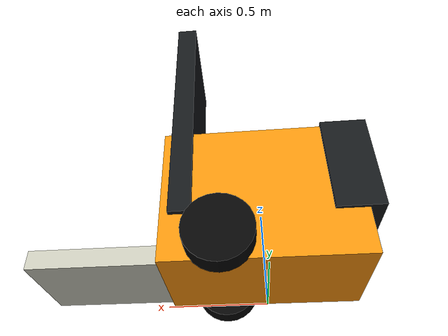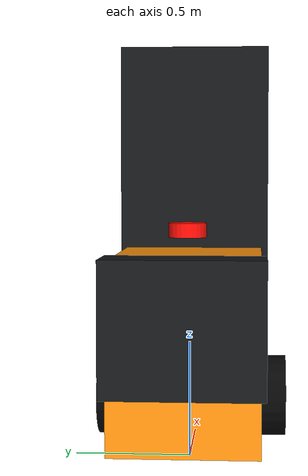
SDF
<?xml version="1.0"?>
<sdf version="1.6">
  <model name="demo_dynamic_forklift">
    <pose>0 0 0.05 0 0 0</pose>
    <static>false</static>
    <allow_auto_disable>false</allow_auto_disable>
    <link name="link">
      <gravity>false</gravity>
      <kinematic>true</kinematic>
      <inertial>
        <mass>120</mass>
        <inertia>
          <ixx>25</ixx>
          <ixy>0</ixy>
          <ixz>0</ixz>
          <iyy>35</iyy>
          <iyz>0</iyz>
          <izz>45</izz>
        </inertia>
      </inertial>
      <collision name="body_collision">
        <pose>0 0 0.45 0 0 0</pose>
        <geometry>
          <box>
            <size>1.05 0.62 0.78</size>
          </box>
        </geometry>
      </collision>
      <collision name="fork_collision">
        <pose>0.72 0 0.12 0 0 0</pose>
        <geometry>
          <box>
            <size>0.95 0.52 0.10</size>
          </box>
        </geometry>
      </collision>
      <visual name="body_visual">
        <pose>0 0 0.45 0 0 0</pose>
        <geometry>
          <box>
            <size>1.05 0.62 0.78</size>
          </box>
        </geometry>
        <material>
          <ambient>1.0 0.58 0.05 1</ambient>
          <diffuse>1.0 0.58 0.05 1</diffuse>
          <specular>0.25 0.2 0.08 1</specular>
        </material>
      </visual>
      <visual name="counterweight_visual">
        <pose>-0.48 0 0.58 0 0 0</pose>
        <geometry>
          <box>
            <size>0.25 0.66 0.55</size>
          </box>
        </geometry>
        <material>
          <ambient>0.08 0.09 0.10 1</ambient>
          <diffuse>0.08 0.09 0.10 1</diffuse>
        </material>
      </visual>
      <visual name="mast_visual">
        <pose>0.42 0 1.04 0 0 0</pose>
        <geometry>
          <box>
            <size>0.12 0.68 1.45</size>
          </box>
        </geometry>
        <material>
          <ambient>0.08 0.09 0.10 1</ambient>
          <diffuse>0.08 0.09 0.10 1</diffuse>
        </material>
      </visual>
      <visual name="fork_visual">
        <pose>0.72 0 0.12 0 0 0</pose>
        <geometry>
          <box>
            <size>0.95 0.52 0.10</size>
          </box>
        </geometry>
        <material>
          <ambient>0.78 0.78 0.72 1</ambient>
          <diffuse>0.78 0.78 0.72 1</diffuse>
        </material>
      </visual>
      <visual name="left_wheel_visual">
        <pose>0.22 0.36 0.18 1.5708 0 0</pose>
        <geometry>
          <cylinder>
            <radius>0.18</radius>
            <length>0.12</length>
          </cylinder>
        </geometry>
        <material>
          <ambient>0.02 0.02 0.02 1</ambient>
          <diffuse>0.02 0.02 0.02 1</diffuse>
        </material>
      </visual>
      <visual name="right_wheel_visual">
        <pose>0.22 -0.36 0.18 1.5708 0 0</pose>
        <geometry>
          <cylinder>
            <radius>0.18</radius>
            <length>0.12</length>
          </cylinder>
        </geometry>
        <material>
          <ambient>0.02 0.02 0.02 1</ambient>
          <diffuse>0.02 0.02 0.02 1</diffuse>
        </material>
      </visual>
      <visual name="beacon_visual">
        <pose>-0.18 0 0.95 0 0 0</pose>
        <geometry>
          <cylinder>
            <radius>0.08</radius>
            <length>0.06</length>
          </cylinder>
        </geometry>
        <material>
          <ambient>1.0 0.05 0.02 1</ambient>
          <diffuse>1.0 0.05 0.02 1</diffuse>
          <emissive>1.0 0.03 0.0 1</emissive>
        </material>
      </visual>
    </link>
  </model>
</sdf>
